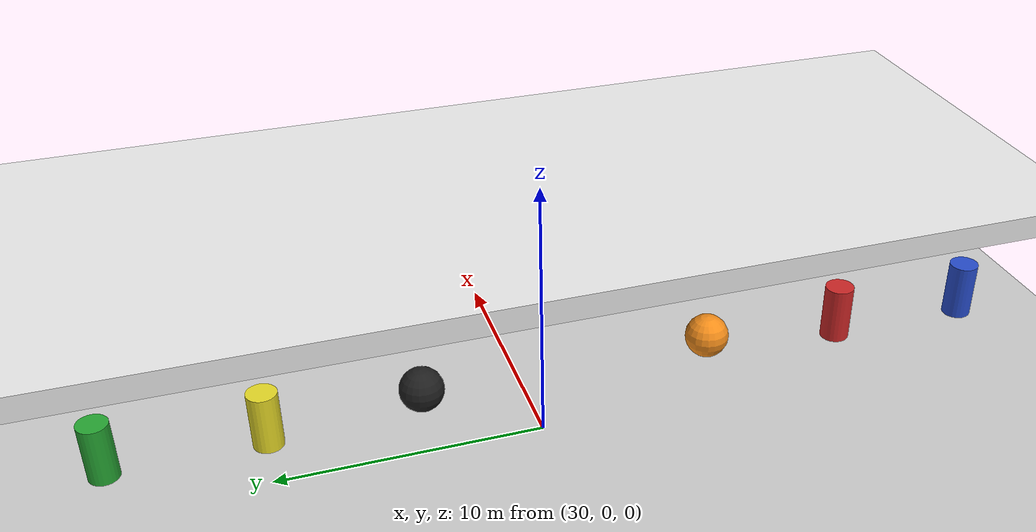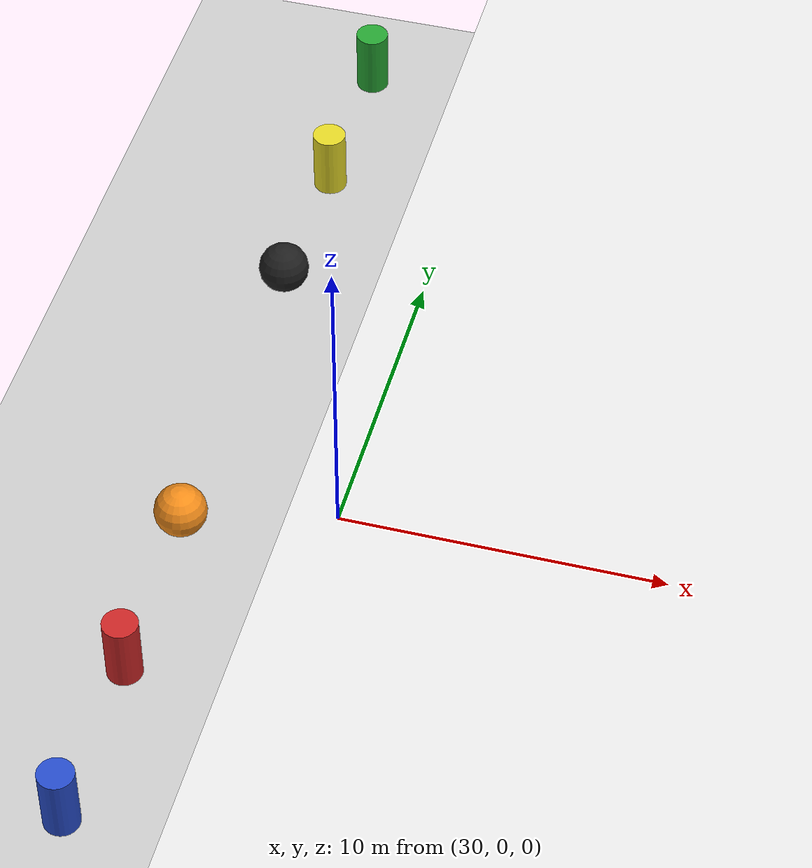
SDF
<sdf version="1.4">
 <world name="lake">
  <scene><sky><clouds><speed>12</speed></clouds></sky></scene>
  <include><uri>model://sun</uri></include>
  <model name="ground_plane">
   <static>1</static>
   <link name="link">
    <collision name="collision">
     <geometry><plane><normal>0 0 1</normal><size>10 10</size></plane></geometry>
     <surface><friction><ode><mu>100</mu><mu2>50</mu2></ode></friction></surface>
    </collision>
    <visual name="visual">
     <transparency>0.9</transparency>
     <geometry><plane><normal>0 0 1</normal><size>10 10</size></plane></geometry>
     <material>
      <script><uri>file://media/materials/scripts/gazebo.material</uri><name>Gazebo/Grey</name></script>
     </material>
    </visual>
    <velocity_decay><linear>0</linear><angular>0</angular></velocity_decay>
   </link>
  </model>
  <include><uri>model://models/buoy</uri><pose>27 15 5 0 0 0</pose></include>
  <include><uri>model://models/buoy_yellow</uri><pose>27 10 5 0 0 0</pose></include>
  <include><uri>model://models/buoy_black</uri><pose>27 5 5 0 0 0</pose></include>
  <include><uri>model://models/ball_orange</uri><pose>27 -5 5 0 0 0</pose></include>
  <include><uri>model://models/buoy_red</uri><pose>27 -10 5 0 0 0</pose></include>
  <include><uri>model://models/buoy_blue</uri><pose>27 -15 5 0 0 0</pose></include>
  <include><uri>model://models/road</uri><pose>40 0 5 0 0 0</pose><static>1</static></include>
 </world>
</sdf>

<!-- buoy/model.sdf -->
<sdf version="1.4">
  <model name="buoy">
    <link name="buoyl">
      <pose>0 0 0 0 0 0</pose>
      <velocity_decay>
        <linear>0.001</linear>
        <angular>0.001</angular>
      </velocity_decay>
      <inertial>
        <pose>0 0 -10 0 0 0</pose>
        <mass>10</mass>
        <inertia>
          <ixx>10</ixx>
          <ixy>0</ixy>
          <ixz>0</ixz>
          <iyy>10</iyy>
          <iyz>0</iyz>
          <izz>10</izz>
        </inertia>
      </inertial>
      <collision name="buoyc">
        <geometry>
          <cylinder>
            <radius>0.5</radius>
            <length>2.0</length>
          </cylinder>
        </geometry>
      </collision>
      <visual name="buoyv">
        <geometry>
          <cylinder>
            <radius>0.5</radius>
            <length>2.0</length>
          </cylinder>
        </geometry>
        <material>
          <script>
            <uri>file://media/materials/scripts/gazebo.material</uri>
            <name>Gazebo/Green</name>
          </script>
        </material>
      </visual>
    </link>
    <plugin name="BuoyancyPlugin" filename="libbuoyancy_gazebo_plugin.so">
      <fluid_density>1000</fluid_density>
      <fluid_level>5.0</fluid_level>
      <fluid_drag>10</fluid_drag>
      <link>
        <name>buoyl</name>
        <center_of_volume>0 0 0.5</center_of_volume>
        <area>0.1</area>
        <height>1</height>
      </link>
    </plugin>
  </model>
</sdf>

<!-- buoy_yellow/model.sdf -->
<sdf version="1.4">
  <model name="buoy_yellow">
    <link name="buoyl">
      <pose>0 0 0 0 0 0</pose>
      <velocity_decay>
        <linear>0.001</linear>
        <angular>0.001</angular>
      </velocity_decay>
      <inertial>
        <pose>0 0 -10 0 0 0</pose>
        <mass>10</mass>
        <inertia>
          <ixx>10</ixx>
          <ixy>0</ixy>
          <ixz>0</ixz>
          <iyy>10</iyy>
          <iyz>0</iyz>
          <izz>10</izz>
        </inertia>
      </inertial>
      <collision name="buoyc">
        <geometry>
          <cylinder>
            <radius>0.5</radius>
            <length>2.0</length>
          </cylinder>
        </geometry>
      </collision>
      <visual name="buoyv">
        <geometry>
          <cylinder>
            <radius>0.5</radius>
            <length>2.0</length>
          </cylinder>
        </geometry>
        <material>
          <script>
            <uri>file://media/materials/scripts/gazebo.material</uri>
            <name>Gazebo/Yellow</name>
          </script>
        </material>
      </visual>
    </link>
    <plugin name="BuoyancyPlugin" filename="libbuoyancy_gazebo_plugin.so">
      <fluid_density>1000</fluid_density>
      <fluid_level>5.0</fluid_level>
      <fluid_drag>10</fluid_drag>
      <link>
        <name>buoyl</name>
        <center_of_volume>0 0 0.5</center_of_volume>
        <area>0.1</area>
        <height>1</height>
      </link>
    </plugin>
  </model>
</sdf>

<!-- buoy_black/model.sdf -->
<sdf version="1.4">
  <model name="buoy">
    <link name="buoyl">
      <pose>0 0 0 0 0 0</pose>
      <velocity_decay>
        <linear>0.001</linear>
        <angular>0.001</angular>
      </velocity_decay>
      <inertial>
        <pose>0 0 -10 0 0 0</pose>
        <mass>10</mass>
        <inertia>
          <ixx>10</ixx>
          <ixy>0</ixy>
          <ixz>0</ixz>
          <iyy>10</iyy>
          <iyz>0</iyz>
          <izz>10</izz>
        </inertia>
      </inertial>
      <collision name="buoyc">
        <geometry>
          <sphere>
            <radius>0.75</radius>
          </sphere>
        </geometry>
      </collision>
      <visual name="buoyv">
        <geometry>
          <sphere>
            <radius>0.75</radius>
          </sphere>
        </geometry>
        <material>
          <script>
            <uri>file://media/materials/scripts/gazebo.material</uri>
            <name>Gazebo/Black</name>
          </script>
        </material>
      </visual>
    </link>
    <plugin name="BuoyancyPlugin" filename="libbuoyancy_gazebo_plugin.so">
      <fluid_density>1000</fluid_density>
      <fluid_level>5.0</fluid_level>
      <fluid_drag>10</fluid_drag>
      <link>
        <name>buoyl</name>
        <center_of_volume>0 0 0.5</center_of_volume>
        <area>0.1</area>
        <height>0.5</height>
      </link>
    </plugin>
  </model>
</sdf>

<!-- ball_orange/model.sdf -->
<sdf version="1.4">
  <model name="buoy">
    <link name="buoyl">
      <pose>0 0 0 0 0 0</pose>
      <velocity_decay>
        <linear>0.001</linear>
        <angular>0.001</angular>
      </velocity_decay>
      <inertial>
        <pose>0 0 -10 0 0 0</pose>
        <mass>1</mass>
        <inertia>
          <ixx>10</ixx>
          <ixy>0</ixy>
          <ixz>0</ixz>
          <iyy>10</iyy>
          <iyz>0</iyz>
          <izz>10</izz>
        </inertia>
      </inertial>
      <collision name="buoyc">
        <geometry>
          <sphere>
            <radius>0.75</radius>
          </sphere>
        </geometry>
      </collision>
      <visual name="buoyv">
        <geometry>
          <sphere>
            <radius>0.75</radius>
          </sphere>
        </geometry>
        <material>
          <script>
            <uri>file://media/materials/scripts/gazebo.material</uri>
            <name>Gazebo/Orange</name>
          </script>
        </material>
      </visual>
    </link>
    <plugin name="BuoyancyPlugin" filename="libbuoyancy_gazebo_plugin.so">
      <fluid_density>1000</fluid_density>
      <fluid_level>5.0</fluid_level>
      <fluid_drag>10</fluid_drag>
      <link>
        <name>buoyl</name>
        <center_of_volume>0 0 0.5</center_of_volume>
        <area>0.1</area>
        <height>0.5</height>
      </link>
    </plugin>
  </model>
</sdf>

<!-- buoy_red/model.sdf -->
<sdf version="1.4">
  <model name="buoy_red">
    <link name="buoyl">
      <pose>0 0 0 0 0 0</pose>
      <velocity_decay>
        <linear>0.001</linear>
        <angular>0.001</angular>
      </velocity_decay>
      <inertial>
        <pose>0 0 -10 0 0 0</pose>
        <mass>10</mass>
        <inertia>
          <ixx>10</ixx>
          <ixy>0</ixy>
          <ixz>0</ixz>
          <iyy>10</iyy>
          <iyz>0</iyz>
          <izz>10</izz>
        </inertia>
      </inertial>
      <collision name="buoyc">
        <geometry>
          <cylinder>
            <radius>0.5</radius>
            <length>2.0</length>
          </cylinder>
        </geometry>
      </collision>
      <visual name="buoyv">
        <geometry>
          <cylinder>
            <radius>0.5</radius>
            <length>2.0</length>
          </cylinder>
        </geometry>
        <material>
          <script>
            <uri>file://media/materials/scripts/gazebo.material</uri>
            <name>Gazebo/Red</name>
          </script>
        </material>
      </visual>
    </link>
    <plugin name="BuoyancyPlugin" filename="libbuoyancy_gazebo_plugin.so">
      <fluid_density>1000</fluid_density>
      <fluid_level>5.0</fluid_level>
      <fluid_drag>10</fluid_drag>
      <link>
        <name>buoyl</name>
        <center_of_volume>0 0 0.5</center_of_volume>
        <area>0.1</area>
        <height>1</height>
      </link>
    </plugin>
  </model>
</sdf>

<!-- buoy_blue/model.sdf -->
<sdf version="1.4">
  <model name="buoy_blue">
    <link name="buoyl">
      <pose>0 0 0 0 0 0</pose>
      <velocity_decay>
        <linear>0.001</linear>
        <angular>0.001</angular>
      </velocity_decay>
      <inertial>
        <pose>0 0 -10 0 0 0</pose>
        <mass>10</mass>
        <inertia>
          <ixx>10</ixx>
          <ixy>0</ixy>
          <ixz>0</ixz>
          <iyy>10</iyy>
          <iyz>0</iyz>
          <izz>10</izz>
        </inertia>
      </inertial>
      <collision name="buoyc">
        <geometry>
          <cylinder>
            <radius>0.5</radius>
            <length>2.0</length>
          </cylinder>
        </geometry>
      </collision>
      <visual name="buoyv">
        <geometry>
          <cylinder>
            <radius>0.5</radius>
            <length>2.0</length>
          </cylinder>
        </geometry>
        <material>
          <script>
            <uri>file://media/materials/scripts/gazebo.material</uri>
            <name>Gazebo/Blue</name>
          </script>
        </material>
      </visual>
    </link>
    <plugin name="BuoyancyPlugin" filename="libbuoyancy_gazebo_plugin.so">
      <fluid_density>1000</fluid_density>
      <fluid_level>5.0</fluid_level>
      <fluid_drag>10</fluid_drag>
      <link>
        <name>buoyl</name>
        <center_of_volume>0 0 0.5</center_of_volume>
        <area>0.1</area>
        <height>1</height>
      </link>
    </plugin>
  </model>
</sdf>

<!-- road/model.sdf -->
<sdf version="1.4">
  <model name="road">
    <link name="roadl">
      <pose>0 0 0 0 0 0</pose>
      <velocity_decay>
        <linear>0.001</linear>
        <angular>0.001</angular>
      </velocity_decay>
      <collision name="roadc">
        <geometry>
          <box>
            <size>20 100 1</size>
          </box>
        </geometry>
      </collision>
      <visual name="roadv">
        <geometry>
          <box>
            <size>20 100 1</size>
          </box>
        </geometry>
        <material>
          <script>
            <uri>file://media/materials/scripts/gazebo.material</uri>
            <name>Gazebo/White</name>
          </script>
        </material>
      </visual>
    </link>
  </model>
</sdf>
